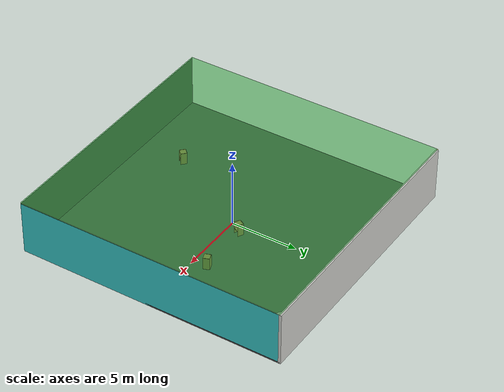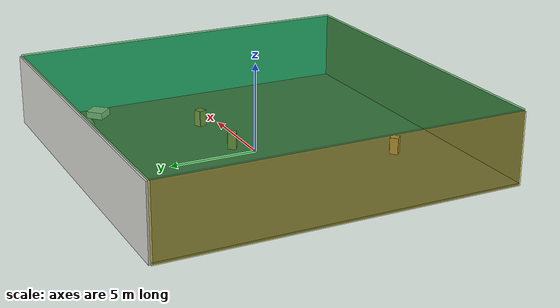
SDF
<sdf version="1.4">
 <world name="default">
  <physics type="ode">
   <max_step_size>0.001</max_step_size>
   <real_time_factor>1</real_time_factor>
   <real_time_update_rate>1000</real_time_update_rate>
   <gravity>0 0 -9.8</gravity>
  </physics>
  <scene><ambient>0.4 0.4 0.4 1</ambient><background>0.7 0.7 0.7 1</background><shadows>1</shadows></scene>
  <model name="Surrounding">
   <static>1</static>
   <link name="Ceiling">
    <collision name="Ceiling_Collision"><geometry><box><size>20 20 0.1</size></box></geometry></collision>
    <visual name="Ceiling_Visual">
     <geometry><box><size>20 20 0.1</size></box></geometry>
     <material>
      <script><uri>file://media/materials/scripts/gazebo.material</uri><name>Gazebo/GreenTransparent</name></script>
     </material>
    </visual>
    <pose>0 0 4.05 0 0 0</pose>
   </link>
   <link name="Wall_South">
    <collision name="Wall_South_Collision">
     <geometry><box><size>20 0 4</size></box></geometry>
     <pose>0 0 2 0 -0 0</pose>
    </collision>
    <visual name="Wall_South_Visual">
     <pose>0 0 2 0 -0 0</pose>
     <geometry><box><size>20 0 4</size></box></geometry>
     <material>
      <script><uri>file://media/materials/scripts/gazebo.material</uri><name>Gazebo/Road</name></script>
     </material>
    </visual>
    <velocity_decay><linear>0</linear><angular>0</angular></velocity_decay>
    <pose>0 -10 0 0 -0 0</pose>
   </link>
   <link name="Wall_East">
    <collision name="Wall_21_Collision">
     <geometry><box><size>20 0 4</size></box></geometry>
     <pose>0 0 2 0 -0 0</pose>
    </collision>
    <visual name="Wall_21_Visual">
     <pose>0 0 2 0 -0 0</pose>
     <geometry><box><size>20 0 4</size></box></geometry>
     <material>
      <script><uri>file://media/materials/scripts/gazebo.material</uri><name>Gazebo/Turquoise</name></script>
     </material>
    </visual>
    <velocity_decay><linear>0</linear><angular>0</angular></velocity_decay>
    <pose>10 0 0 0 -0 1.5708</pose>
   </link>
   <link name="Wall_North">
    <collision name="Wall_22_Collision">
     <geometry><box><size>20 0.2 4</size></box></geometry>
     <pose>0 0 2 0 -0 0</pose>
    </collision>
    <visual name="Wall_22_Visual">
     <pose>0 0 2 0 -0 0</pose>
     <geometry><box><size>20 0.2 4</size></box></geometry>
     <material>
      <script><uri>file://media/materials/scripts/gazebo.material</uri><name>Gazebo/CeilingTiled</name></script>
     </material>
    </visual>
    <velocity_decay><linear>0</linear><angular>0</angular></velocity_decay>
    <pose>0 10 0 0 -0 0</pose>
   </link>
   <link name="Wall_West">
    <collision name="Wall_23_Collision">
     <geometry><box><size>20 0.2 4</size></box></geometry>
     <pose>0 0 2 0 -0 0</pose>
    </collision>
    <visual name="Wall_23_Visual">
     <pose>0 0 2 0 -0 0</pose>
     <geometry><box><size>20 0.2 4</size></box></geometry>
     <material>
      <script>
       <uri>file://media/materials/scripts/gazebo.material</uri>
       <name>Gazebo/YellowTransparent</name>
      </script>
     </material>
    </visual>
    <velocity_decay><linear>0</linear><angular>0</angular></velocity_decay>
    <pose>-10 0 0 0 0 -1.5708</pose>
   </link>
   <link name="Ground_link">
    <collision name="collision">
     <pose>0 0 .05 0 -0 0</pose>
     <geometry><box><size>20 20 0.1</size></box></geometry>
    </collision>
    <visual name="visual">
     <pose>0 0 .05 0 -0 0</pose>
     <geometry><box><size>20 20 0.1</size></box></geometry>
     <material>
      <script><uri>file://media/materials/scripts/gazebo.material</uri><name>Gazebo/Road</name></script>
     </material>
    </visual>
   </link>
   <static>1</static>
  </model>
  <spherical_coordinates>
   <surface_model>EARTH_WGS84</surface_model>
   <latitude_deg>0</latitude_deg>
   <longitude_deg>0</longitude_deg>
   <elevation>0</elevation>
   <heading_deg>0</heading_deg>
  </spherical_coordinates>
  <light name="lightball_0" type="diffuse">
   <diffuse>0.8 0.8 0.8 1</diffuse>
   <specular>0.2 0.2 0.2 1</specular>
   <attenuation>
    <range>100</range>
    <constant>0.7</constant>
    <linear>0.01</linear>
    <quadratic>0.001</quadratic>
   </attenuation>
   <direction>-0.5 0.1 -0.9</direction>
   <pose>8.30070066626 3.91345728133 1.22056718441 0 0 0</pose>
  </light>
  <light name="lightball_1" type="diffuse">
   <diffuse>0.8 0.8 0.8 1</diffuse>
   <specular>0.2 0.2 0.2 1</specular>
   <attenuation>
    <range>100</range>
    <constant>0.7</constant>
    <linear>0.01</linear>
    <quadratic>0.001</quadratic>
   </attenuation>
   <direction>-0.5 0.1 -0.9</direction>
   <pose>-7.07058084739 -9.71955512935 1.61725064916 0 0 0</pose>
  </light>
  <light name="lightball_2" type="diffuse">
   <diffuse>0.8 0.8 0.8 1</diffuse>
   <specular>0.2 0.2 0.2 1</specular>
   <attenuation>
    <range>100</range>
    <constant>0.7</constant>
    <linear>0.01</linear>
    <quadratic>0.001</quadratic>
   </attenuation>
   <direction>-0.5 0.1 -0.9</direction>
   <pose>-9.35891684869 1.96199209578 1.34555371539 0 0 0</pose>
  </light>
  <light name="lightball_3" type="diffuse">
   <diffuse>0.8 0.8 0.8 1</diffuse>
   <specular>0.2 0.2 0.2 1</specular>
   <attenuation>
    <range>100</range>
    <constant>0.7</constant>
    <linear>0.01</linear>
    <quadratic>0.001</quadratic>
   </attenuation>
   <direction>-0.5 0.1 -0.9</direction>
   <pose>-7.97381951744 5.41598198505 2.59280589947 0 0 0</pose>
  </light>
  <light name="lightball_4" type="diffuse">
   <diffuse>0.8 0.8 0.8 1</diffuse>
   <specular>0.2 0.2 0.2 1</specular>
   <attenuation>
    <range>100</range>
    <constant>0.7</constant>
    <linear>0.01</linear>
    <quadratic>0.001</quadratic>
   </attenuation>
   <direction>-0.5 0.1 -0.9</direction>
   <pose>-5.76591693994 1.66986164925 1.34703384792 0 0 0</pose>
  </light>
  <light name="lightball_5" type="diffuse">
   <diffuse>0.8 0.8 0.8 1</diffuse>
   <specular>0.2 0.2 0.2 1</specular>
   <attenuation>
    <range>100</range>
    <constant>0.7</constant>
    <linear>0.01</linear>
    <quadratic>0.001</quadratic>
   </attenuation>
   <direction>-0.5 0.1 -0.9</direction>
   <pose>-0.416195670354 -4.15673585748 0.543103940342 0 0 0</pose>
  </light>
  <light name="lightball_6" type="diffuse">
   <diffuse>0.8 0.8 0.8 1</diffuse>
   <specular>0.2 0.2 0.2 1</specular>
   <attenuation>
    <range>100</range>
    <constant>0.7</constant>
    <linear>0.01</linear>
    <quadratic>0.001</quadratic>
   </attenuation>
   <direction>-0.5 0.1 -0.9</direction>
   <pose>9.58882724936 8.3506109229 2.16398379533 0 0 0</pose>
  </light>
  <light name="lightball_7" type="diffuse">
   <diffuse>0.8 0.8 0.8 1</diffuse>
   <specular>0.2 0.2 0.2 1</specular>
   <attenuation>
    <range>100</range>
    <constant>0.7</constant>
    <linear>0.01</linear>
    <quadratic>0.001</quadratic>
   </attenuation>
   <direction>-0.5 0.1 -0.9</direction>
   <pose>0.780997587149 -3.51069056186 3.16767052838 0 0 0</pose>
  </light>
  <light name="lightball_8" type="diffuse">
   <diffuse>0.8 0.8 0.8 1</diffuse>
   <specular>0.2 0.2 0.2 1</specular>
   <attenuation>
    <range>100</range>
    <constant>0.7</constant>
    <linear>0.01</linear>
    <quadratic>0.001</quadratic>
   </attenuation>
   <direction>-0.5 0.1 -0.9</direction>
   <pose>-4.96259529425 -8.22620307097 1.12530113403 0 0 0</pose>
  </light>
  <light name="lightball_9" type="diffuse">
   <diffuse>0.8 0.8 0.8 1</diffuse>
   <specular>0.2 0.2 0.2 1</specular>
   <attenuation>
    <range>100</range>
    <constant>0.7</constant>
    <linear>0.01</linear>
    <quadratic>0.001</quadratic>
   </attenuation>
   <direction>-0.5 0.1 -0.9</direction>
   <pose>-8.24154244833 -3.31305624484 1.62519214475 0 0 0</pose>
  </light>
  <include><uri>model://cabinet</uri><pose>-3.70109772616 -6.54606717008 0 0 0 2.38361708863</pose></include>
  <include><uri>model://cabinet</uri><pose>0.804215890854 1.03136910864 0 0 0 2.63939370785</pose></include>
  <include><uri>model://cabinet</uri><pose>4.84272863335 1.16701344994 0 0 0 1.91194646223</pose></include>
  <include>
   <uri>model://textured_shapes</uri>
   <pose>7.7515638659 7.06229578922 0 0 0 0.775362013424</pose>
  </include>
 </world>
</sdf>

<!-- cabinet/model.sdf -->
<sdf version="1.5">
  <model name="cabinet">
    <static>true</static>
    <link name="cabinet_bottom_plate">
      <inertial>
        <pose>0 0 -1 0 0 0</pose>
        <inertia>
          <ixx>2.050000</ixx>
          <ixy>0</ixy>
          <ixz>0</ixz>
          <iyy>2.050000</iyy>
          <iyz>0</iyz>
          <izz>2.050000</izz>
        </inertia>
        <mass>25.000000</mass>
      </inertial>
      <collision name="cabinet_bottom_plate_geom">
        <pose>0 0 0.010000 0 0 0</pose>
        <geometry>
          <box>
            <size>0.450000 0.450000 0.020000</size>
          </box>
        </geometry>
      </collision>
      <visual name="cabinet_bottom_plate_geom_visual">
        <pose>0 0 0.010000 0 0 0</pose>
        <geometry>
          <box>
            <size>0.450000 0.450000 0.020000</size>
          </box>
        </geometry>
        <material>
          <script>
            <uri>model://media/materials/scripts/gazebo.material</uri>
            <name>Gazebo/Wood</name>
          </script>
        </material>
      </visual>
      <collision name="cabinet_bottom_plate_geom_cabinet_back_plate">
        <pose>0.235000 0 0.510000 0 0 0</pose>
        <geometry>
          <box>
            <size>0.020000 0.450000 1.020000</size>
          </box>
        </geometry>
      </collision>
      <visual name="cabinet_bottom_plate_geom_cabinet_back_plate_visual">
        <pose>0.235000 0 0.510000 0 0 0</pose>
        <geometry>
          <box>
            <size>0.020000 0.450000 1.020000</size>
          </box>
        </geometry>
        <material>
          <script>
            <uri>model://media/materials/scripts/gazebo.material</uri>
            <name>Gazebo/Wood</name>
          </script>
        </material>
      </visual>
      <collision name="cabinet_bottom_plate_geom_cabinet_left_plate">
        <pose>0 0.235000 0.510000 0 0 0</pose>
        <geometry>
          <box>
            <size>0.450000 0.020000 1.020000</size>
          </box>
        </geometry>
      </collision>
      <visual name="cabinet_bottom_plate_geom_cabinet_left_plate_visual">
        <pose>0 0.235000 0.510000 0 0 0</pose>
        <geometry>
          <box>
            <size>0.450000 0.020000 1.020000</size>
          </box>
        </geometry>
        <material>
          <script>
            <uri>model://media/materials/scripts/gazebo.material</uri>
            <name>Gazebo/Wood</name>
          </script>
        </material>
      </visual>
      <collision name="cabinet_bottom_plate_geom_cabinet_middle_plate">
        <pose>0 0 0.510000 0 0 0</pose>
        <geometry>
          <box>
            <size>0.450000 0.450000 0.020000</size>
          </box>
        </geometry>
      </collision>
      <visual name="cabinet_bottom_plate_geom_cabinet_middle_plate_visual">
        <pose>0 0 0.510000 0 0 0</pose>
        <geometry>
          <box>
            <size>0.450000 0.450000 0.020000</size>
          </box>
        </geometry>
        <material>
          <script>
            <uri>model://media/materials/scripts/gazebo.material</uri>
            <name>Gazebo/Wood</name>
          </script>
        </material>
      </visual>
      <collision name="cabinet_bottom_plate_geom_cabinet_right_plate">
        <pose>0 -0.235000 0.510000 0 0 0</pose>
        <geometry>
          <box>
            <size>0.450000 0.020000 1.020000</size>
          </box>
        </geometry>
      </collision>
      <visual name="cabinet_bottom_plate_geom_cabinet_right_plate_visual">
        <pose>0 -0.235000 0.510000 0 0 0</pose>
        <geometry>
          <box>
            <size>0.450000 0.020000 1.020000</size>
          </box>
        </geometry>
        <material>
          <script>
            <uri>model://media/materials/scripts/gazebo.material</uri>
            <name>Gazebo/Wood</name>
          </script>
        </material>
      </visual>
      <collision name="cabinet_bottom_plate_geom_cabinet_top_plate">
        <pose>0 0 1.010000 0 0 0</pose>
        <geometry>
          <box>
            <size>0.450000 0.450000 0.020000</size>
          </box>
        </geometry>
      </collision>
      <visual name="cabinet_bottom_plate_geom_cabinet_top_plate_visual">
        <pose>0 0 1.010000 0 0 0</pose>
        <geometry>
          <box>
            <size>0.450000 0.450000 0.020000</size>
          </box>
        </geometry>
        <material>
          <script>
            <uri>model://media/materials/scripts/gazebo.material</uri>
            <name>Gazebo/Wood</name>
          </script>
        </material>
      </visual>
    </link>
  </model>
</sdf>

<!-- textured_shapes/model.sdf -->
<sdf version="1.6">
  <model name="textured_shapes">
    <pose>0 0 0.5 0 0 0</pose>
    <link name="box">
      <pose>0 -1.5 0 0 0 0</pose>
      <collision name="collision">
        <geometry>
          <box>
            <size>1 1 1</size>
          </box>
        </geometry>
      </collision>
      <visual name="visual">
        <geometry>
          <box>
            <size>1 1 1</size>
          </box>
        </geometry>
        <material>
          <script>
            <uri>model://../model_source/models/textured_shapes/materials/scripts</uri>
            <uri>model://../model_source/models/textured_shapes/materials/textures</uri>
            <name>TexturedShape/Squares</name>
          </script>
        </material>
      </visual>
    </link>
    <link name="sphere">
      <collision name="collision">
        <geometry>
          <sphere>
            <radius>0.5</radius>
          </sphere>
        </geometry>
      </collision>
      <visual name="visual">
        <geometry>
          <sphere>
            <radius>0.5</radius>
          </sphere>
        </geometry>
        <material>
          <script>
            <uri>model://../model_source/models/textured_shapes/materials/scripts</uri>
            <uri>model://../model_source/models/textured_shapes/materials/textures</uri>
            <name>TexturedShape/Squares</name>
          </script>
        </material>
      </visual>
    </link>
    <link name="cylinder">
      <pose>0 1.5 0 0 0 0</pose>
      <collision name="collision">
        <geometry>
          <cylinder>
            <radius>0.5</radius>
            <length>1</length>
          </cylinder>
        </geometry>
      </collision>
      <visual name="visual">
        <geometry>
          <cylinder>
            <radius>0.5</radius>
            <length>1</length>
          </cylinder>
        </geometry>
        <material>
          <script>
            <uri>model://../model_source/models/textured_shapes/materials/scripts</uri>
            <uri>model://../model_source/models/textured_shapes/materials/textures</uri>
            <name>TexturedShape/Squares</name>
          </script>
        </material>
      </visual>
    </link>
  </model>
</sdf>
